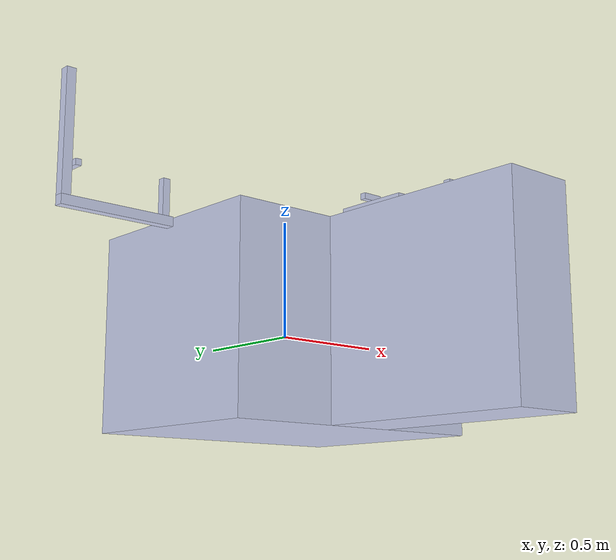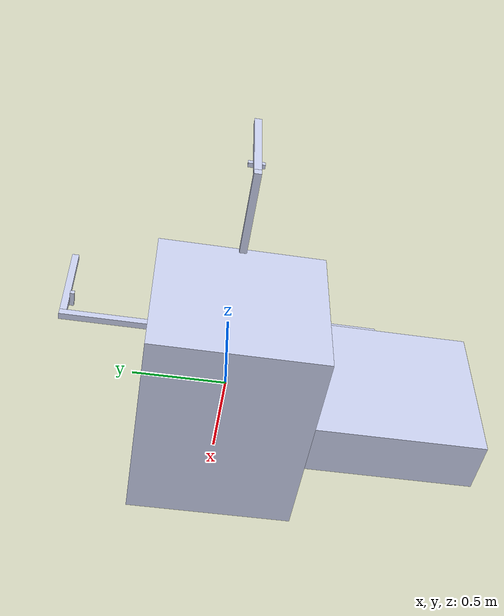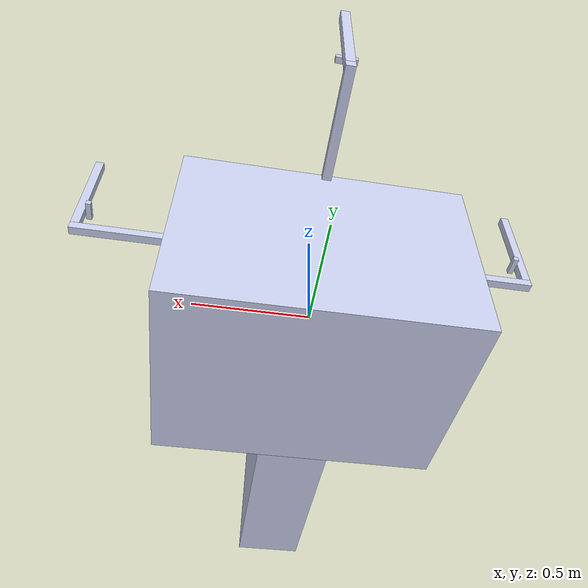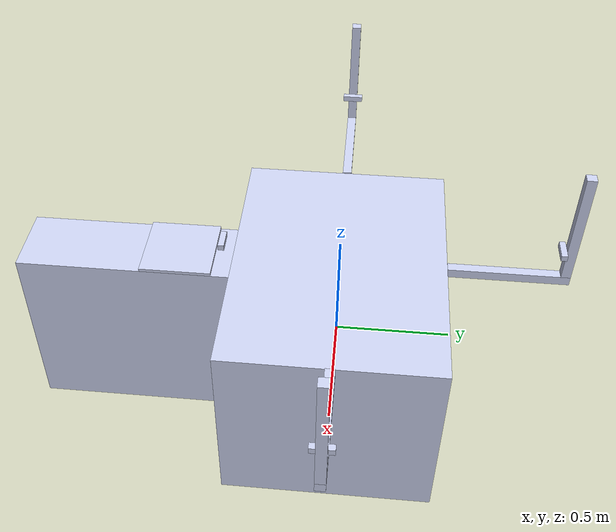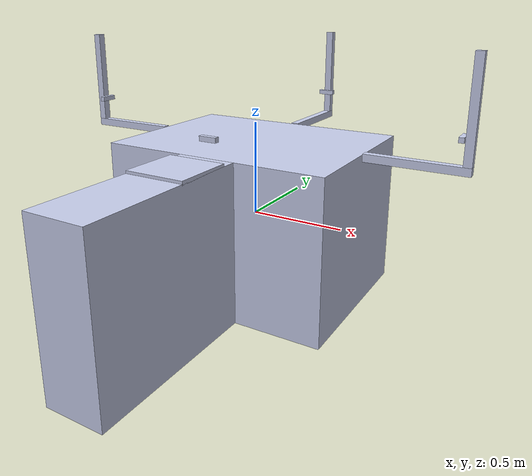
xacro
<?xml version="1.0"?>
<robot xmlns:xi="http://www.w3.org/2001/XInclude"
    xmlns:gazebo="http://playerstage.sourceforge.net/gazebo/xmlschema/#gz"
    xmlns:model="http://playerstage.sourceforge.net/gazebo/xmlschema/#model"
    xmlns:sensor="http://playerstage.sourceforge.net/gazebo/xmlschema/#sensor"
    xmlns:body="http://playerstage.sourceforge.net/gazebo/xmlschema/#body"
    xmlns:geom="http://playerstage.sourceforge.net/gazebo/xmlschema/#geom"
    xmlns:joint="http://playerstage.sourceforge.net/gazebo/xmlschema/#joint"
    xmlns:controller="http://playerstage.sourceforge.net/gazebo/xmlschema/#controller"
    xmlns:interface="http://playerstage.sourceforge.net/gazebo/xmlschema/#interface"
    xmlns:rendering="http://playerstage.sourceforge.net/gazebo/xmlschema/#rendering"
    xmlns:renderable="http://playerstage.sourceforge.net/gazebo/xmlschema/#renderable"
    xmlns:physics="http://playerstage.sourceforge.net/gazebo/xmlschema/#physics"
    xmlns:xacro="http://ros.org/wiki/xacro" name="ur5e_d435_millibar_combined_r2f85" >

  <xacro:include filename="$(find armada_description)/armada_test_station/urdf/workstation_model.urdf.xacro" />

  <xacro:workstation prefix="table_" namespace=""/>

</robot>

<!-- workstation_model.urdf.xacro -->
<robot xmlns:xi="http://www.w3.org/2001/XInclude"
    xmlns:gazebo="http://playerstage.sourceforge.net/gazebo/xmlschema/#gz"
    xmlns:model="http://playerstage.sourceforge.net/gazebo/xmlschema/#model"
    xmlns:sensor="http://playerstage.sourceforge.net/gazebo/xmlschema/#sensor"
    xmlns:body="http://playerstage.sourceforge.net/gazebo/xmlschema/#body"
    xmlns:geom="http://playerstage.sourceforge.net/gazebo/xmlschema/#geom"
    xmlns:joint="http://playerstage.sourceforge.net/gazebo/xmlschema/#joint"
    xmlns:controller="http://playerstage.sourceforge.net/gazebo/xmlschema/#controller"
    xmlns:interface="http://playerstage.sourceforge.net/gazebo/xmlschema/#interface"
    xmlns:rendering="http://playerstage.sourceforge.net/gazebo/xmlschema/#rendering"
    xmlns:renderable="http://playerstage.sourceforge.net/gazebo/xmlschema/#renderable"
    xmlns:physics="http://playerstage.sourceforge.net/gazebo/xmlschema/#physics"
    xmlns:xacro="http://ros.org/wiki/xacro">

  <xacro:macro name="workstation" params="prefix namespace">

  <xacro:include filename="$(find armada_gazebo)/armada_test_station/urdf/workstation_model_gazebo.xacro" />
  <xacro:include filename="$(find armada_gazebo)/armada_test_station/urdf/workstation_depth_cameras_gazebo.xacro" />

  <xacro:workstation_gazebo prefix="${prefix}" />
  <xacro:workstation_depth_cameras_gazebo prefix="${prefix}" />

  <!-- TABLE BASE LINK -->
  <link name="${prefix}base_link">
    <visual>
      <origin xyz="0.0 0.0 0.0" rpy="0 0 0" />
      <geometry>
        <box size="1.2 0.9 0.82"/>
      </geometry>
      <material name="">
        <color rgba="0.79216 0.81961 0.93333 1" />
      </material>
    </visual>
    <collision>
      <origin xyz="0.0 0.0 0.0" rpy="0 0 0" />
      <geometry>
        <box size="1.2 0.9 0.82"/>
      </geometry>
    </collision>
  </link>

  <!-- TABLE TO PEDESTAL JOINT -->
  <joint name="table_to_pedestal_joint" type="fixed">
    <origin xyz="0.0 -0.9 0" rpy="0.0 0.0 0.0" />
    <parent link="${prefix}base_link" />
    <child link="${prefix}pedestal_link" />
    <axis xyz="0 0 0" />
  </joint>

  <!-- PEDESTAL LINK -->
  <link name="${prefix}pedestal_link">
    <inertial>
      <origin xyz="0 0 1" rpy="0 0 0" />
      <mass value="1" />
      <inertia ixx="1" ixy="0" ixz="0" iyy="1" iyz="0" izz="1" />
    </inertial>
    <visual>
      <origin xyz="0.0 0.0 0.0" rpy="0 0 0" />
      <geometry>
        <box size="0.3 0.9 0.82"/>
      </geometry>
      <material name="">
        <color rgba="0.79216 0.81961 0.93333 1" />
      </material>
    </visual>
    <collision>
      <origin xyz="0.0 0.0 0.0" rpy="0 0 0" />
      <geometry>
        <box size="0.3 0.9 0.82"/>
      </geometry>
    </collision>
  </link>

  <!-- PEDESTAL TO MOUNTING PLATE JOINT -->
  <joint name="pedestal_to_mounting_plate_joint" type="fixed">
    <origin xyz="0.0 0.225 0.414" rpy="0.0 0.0 ${pi}" />
    <parent link="${prefix}pedestal_link" />
    <child link="${prefix}mounting_plate_link" />
    <axis xyz="0 0 0" />
  </joint>

  <!-- MOUNTING PLATE LINK -->
  <link name="${prefix}mounting_plate_link">
    <inertial>
      <origin xyz="0 0 1" rpy="0 0 0" />
      <mass value="1" />
      <inertia ixx="1" ixy="0" ixz="0" iyy="1" iyz="0" izz="1" />
    </inertial>
    <visual>
      <origin xyz="0.0 0.0 0.0" rpy="0 0 0" />
      <geometry>
        <box size="0.3 0.3 0.02"/>
      </geometry>
      <material name="">
        <color rgba="0.79216 0.81961 0.93333 1" />
      </material>
    </visual>
    <collision>
      <origin xyz="0.0 0.0 0.0" rpy="0 0 0" />
      <geometry>
        <box size="0.3 0.3 0.0095"/>
      </geometry>
    </collision>
  </link>

  <!--  THIS IS WHERE WE ARE CREATING AN EXPERIMENTAL BASE_CAMERA LINK FOR OUR **ACTUAL** REALSENSE CAMERA -->

  <!-- WRIST VERTICAL ARM TO LEFT CAMERA JOINT -->
  <joint name="mounting_plate_to_wrist_camera_joint" type="fixed">
    <origin xyz="-0.042 -0.19 0.10" rpy="0.0 0.0 ${pi/2}" />
    <parent link="${prefix}mounting_plate_link" />
    <child link="${prefix}wrist_camera_link" />
    <axis xyz="0 0 0" />
  </joint>

  <!-- WRIST CAMERA LINK -->
  <link name="${prefix}wrist_camera_link">
    <inertial>
      <origin xyz="0 0 1" rpy="0 0 0" />
      <mass value="1" />
      <inertia ixx="1" ixy="0" ixz="0" iyy="1" iyz="0" izz="1" />
    </inertial>
    <visual>
      <origin xyz="0.0 0.0 0.0" rpy="0 0 0" />
      <geometry>
        <box size="0.025 0.09 0.025"/>
      </geometry>
      <material name="">
        <color rgba="0.79216 0.81961 0.93333 1" />
      </material>
    </visual>
    <collision>
      <origin xyz="0.0 0.0 0.0" rpy="0 0 0" />
      <geometry>
        <box size="0.025 0.09 0.025"/>
      </geometry>
    </collision>
  </link>

  <!-- Create a virtual joint between left_camera_link and left_gazebo_depth_camera link -->
  <joint name="${prefix}wrist_camera_to_base_optical_joint" type="fixed">
    <origin xyz="0.0 0.0 0.0" rpy="${-pi/2} 0.0 ${-pi/2}" />
    <parent link="${prefix}wrist_camera_link" />
    <child link="${namespace}/${prefix}wrist_optical" />
    <axis xyz="0 0 0" />
  </joint>

  <!-- WRIST OPTICAL -->
  <link name="${namespace}/${prefix}wrist_optical" />

  <!--  THIS IS WHERE WE ARE CREATING AN EXPERIMENTAL BASE_CAMERA LINK FOR OUR **ACTUAL** REALSENSE CAMERA -->

  <!-- TABLE TO LEFT HORIZONTAL ARM JOINT -->
  <joint name="table_to_left_horizontal_arm_joint" type="fixed">
    <origin xyz="-0.85 0.0 0.395" rpy="0.0 0.0 0.0" />
    <parent link="${prefix}base_link" />
    <child link="${prefix}left_horizontal_arm_link" />
    <axis xyz="0 0 0" />
  </joint>

  <!-- LEFT HORIZONTAL ARM LINK -->
  <link name="${prefix}left_horizontal_arm_link">
    <inertial>
      <origin xyz="0 0 1" rpy="0 0 0" />
      <mass value="1" />
      <inertia ixx="1" ixy="0" ixz="0" iyy="1" iyz="0" izz="1" />
    </inertial>
    <visual>
      <origin xyz="0.0 0.0 0.0" rpy="0 0 0" />
      <geometry>
        <box size="0.5 0.04 0.04"/>
      </geometry>
      <material name="">
        <color rgba="0.79216 0.81961 0.93333 1" />
      </material>
    </visual>
    <collision>
      <origin xyz="0.0 0.0 0.0" rpy="0 0 0" />
      <geometry>
        <box size="0.5 0.04 0.04"/>
      </geometry>
    </collision>
  </link>

  <!-- LEFT HORIZONTAL ARM TO LEFT VERTICAL ARM JOINT -->
  <joint name="left_horizontal_arm_to_left_vertical_arm_joint" type="fixed">
    <origin xyz="-0.23 0.0 0.27" rpy="0.0 0.0 0.0" />
    <parent link="${prefix}left_horizontal_arm_link" />
    <child link="${prefix}left_vertical_arm_link" />
    <axis xyz="0 0 0" />
  </joint>

  <!-- LEFT VERTICAL ARM LINK -->
  <link name="${prefix}left_vertical_arm_link">
    <inertial>
      <origin xyz="0 0 1" rpy="0 0 0" />
      <mass value="1" />
      <inertia ixx="1" ixy="0" ixz="0" iyy="1" iyz="0" izz="1" />
    </inertial>
    <visual>
      <origin xyz="0.0 0.0 0.0" rpy="0 0 0" />
      <geometry>
        <box size="0.04 0.04 0.5"/>
      </geometry>
      <material name="">
        <color rgba="0.79216 0.81961 0.93333 1" />
      </material>
    </visual>
    <collision>
      <origin xyz="0.0 0.0 0.0" rpy="0 0 0" />
      <geometry>
        <box size="0.04 0.04 0.5"/>
      </geometry>
    </collision>
  </link>

  <!-- LEFT VERTICAL ARM TO LEFT CAMERA JOINT -->
  <joint name="left_vertical_arm_to_left_camera_joint" type="fixed">
    <origin xyz="0.0325 0.0 -0.125" rpy="0.0 0.0 0.0" />
    <parent link="${prefix}left_vertical_arm_link" />
    <child link="${prefix}left_camera_link" />
    <axis xyz="0 0 0" />
  </joint>

  <!-- LEFT CAMERA LINK -->
  <link name="${prefix}left_camera_link">
    <inertial>
      <origin xyz="0 0 1" rpy="0 0 0" />
      <mass value="1" />
      <inertia ixx="1" ixy="0" ixz="0" iyy="1" iyz="0" izz="1" />
    </inertial>
    <visual>
      <origin xyz="0.0 0.0 0.0" rpy="0 0 0" />
      <geometry>
        <box size="0.025 0.09 0.025"/>
      </geometry>
      <material name="">
        <color rgba="0.79216 0.81961 0.93333 1" />
      </material>
    </visual>
    <collision>
      <origin xyz="0.0 0.0 0.0" rpy="0 0 0" />
      <geometry>
        <box size="0.025 0.09 0.025"/>
      </geometry>
    </collision>
  </link>

  <!-- Create a virtual joint between left_camera_link and left_gazebo_depth_camera link -->
  <joint name="${prefix}left_camera_to_left_optical_joint" type="fixed">
    <origin xyz="0.0 0.0 0.0" rpy="${-pi/2} 0.0 ${-pi/2}" />
    <parent link="${prefix}left_camera_link" />
    <child link="${namespace}/${prefix}left_optical" />
    <axis xyz="0 0 0" />
  </joint>

  <!-- LEFT OPTICAL -->
  <link name="${namespace}/${prefix}left_optical" />

  <!-- TABLE TO RIGHT HORIZONTAL ARM JOINT -->
  <joint name="table_to_right_horizontal_arm_joint" type="fixed">
    <origin xyz="0.85 0.0 0.395" rpy="0.0 0.0 0.0" />
    <parent link="${prefix}base_link" />
    <child link="${prefix}right_horizontal_arm_link" />
    <axis xyz="0 0 0" />
  </joint>

  <!-- RIGHT HORIZONTAL ARM LINK -->
  <link name="${prefix}right_horizontal_arm_link">
    <inertial>
      <origin xyz="0 0 1" rpy="0 0 0" />
      <mass value="1" />
      <inertia ixx="1" ixy="0" ixz="0" iyy="1" iyz="0" izz="1" />
    </inertial>
    <visual>
      <origin xyz="0.0 0.0 0.0" rpy="0 0 0" />
      <geometry>
        <box size="0.5 0.04 0.04"/>
      </geometry>
      <material name="">
        <color rgba="0.79216 0.81961 0.93333 1" />
      </material>
    </visual>
    <collision>
      <origin xyz="0.0 0.0 0.0" rpy="0 0 0" />
      <geometry>
        <box size="0.5 0.04 0.04"/>
      </geometry>
    </collision>
  </link>

  <!-- RIGHT HORIZONTAL ARM TO RIGHT VERTICAL ARM JOINT -->
  <joint name="right_horizontal_arm_to_right_vertical_arm_joint" type="fixed">
    <origin xyz="0.23 0.0 0.27" rpy="0.0 0.0 0.0" />
    <parent link="${prefix}right_horizontal_arm_link" />
    <child link="${prefix}right_vertical_arm_link" />
    <axis xyz="0 0 0" />
  </joint>

  <!-- RIGHT VERTICAL ARM LINK -->
  <link name="${prefix}right_vertical_arm_link">
    <inertial>
      <origin xyz="0 0 1" rpy="0 0 0" />
      <mass value="1" />
      <inertia ixx="1" ixy="0" ixz="0" iyy="1" iyz="0" izz="1" />
    </inertial>
    <visual>
      <origin xyz="0.0 0.0 0.0" rpy="0 0 0" />
      <geometry>
        <box size="0.04 0.04 0.5"/>
      </geometry>
      <material name="">
        <color rgba="0.79216 0.81961 0.93333 1" />
      </material>
    </visual>
    <collision>
      <origin xyz="0.0 0.0 0.0" rpy="0 0 0" />
      <geometry>
        <box size="0.04 0.04 0.5"/>
      </geometry>
    </collision>
  </link>

  <!-- change these values for camera direction -->
  <!-- RIGHT VERTICAL ARM TO RIGHT CAMERA JOINT -->
  <joint name="right_vertical_arm_to_right_camera_joint" type="fixed">
    <origin xyz="-0.0325 0.0 -0.125" rpy="0.0 0.0 ${pi}" />
    <parent link="${prefix}right_vertical_arm_link" />
    <child link="${prefix}right_camera_link" />
    <axis xyz="0 0 0" />
  </joint>

  <!-- RIGHT CAMERA LINK -->
  <link name="${prefix}right_camera_link">
    <inertial>
      <origin xyz="0 0 1" rpy="0 0 0" />
      <mass value="1" />
      <inertia ixx="1" ixy="0" ixz="0" iyy="1" iyz="0" izz="1" />
    </inertial>
    <visual>
      <origin xyz="0.0 0.0 0.0" rpy="0 0 0" />
      <geometry>
        <box size="0.025 0.09 0.025"/>
      </geometry>
      <material name="">
        <color rgba="0.79216 0.81961 0.93333 1" />
      </material>
    </visual>
    <collision>
      <origin xyz="0.0 0.0 0.0" rpy="0 0 0" />
      <geometry>
        <box size="0.025 0.09 0.025"/>
      </geometry>
    </collision>
  </link>

  <!-- ${-pi/2} ${pi/2} ${-pi} ${pi} -->
  <!-- change these values for location of camera frame -->
  <!-- Create a virtual joint between right_camera_link and right_gazebo_depth_camera link -->
  <joint name="${prefix}right_camera_to_right_optical_joint" type="fixed">
    <origin xyz="0.0 0.0 0.0" rpy="${-pi/2} 0.0 ${-pi/2}" />
    <parent link="${prefix}right_camera_link" />
    <child link="${namespace}/${prefix}right_optical" />
    <axis xyz="0 0 0" />
  </joint>

  <!-- RIGHT OPTICAL -->
  <link name="${namespace}/${prefix}right_optical" />

  <!-- TABLE TO REAR HORIZONTAL ARM JOINT -->
  <joint name="table_to_rear_horizontal_arm_joint" type="fixed">
    <origin xyz="0.0 0.7 0.395" rpy="0.0 0.0 0.0" />
    <parent link="${prefix}base_link" />
    <child link="${prefix}rear_horizontal_arm_link" />
    <axis xyz="0 0 0" />
  </joint>

  <!-- REAR HORIZONTAL ARM LINK -->
  <link name="${prefix}rear_horizontal_arm_link">
    <inertial>
      <origin xyz="0 0 1" rpy="0 0 0" />
      <mass value="1" />
      <inertia ixx="1" ixy="0" ixz="0" iyy="1" iyz="0" izz="1" />
    </inertial>
    <visual>
      <origin xyz="0.0 0.0 0.0" rpy="0 0 0" />
      <geometry>
        <box size="0.04 0.5 0.04"/>
      </geometry>
      <material name="">
        <color rgba="0.79216 0.81961 0.93333 1" />
      </material>
    </visual>
    <collision>
      <origin xyz="0.0 0.0 0.0" rpy="0 0 0" />
      <geometry>
        <box size="0.04 0.5 0.04"/>
      </geometry>
    </collision>
  </link>

  <!-- REAR HORIZONTAL ARM TO REAR VERTICAL ARM JOINT -->
  <joint name="rear_horizontal_arm_to_rear_vertical_arm_joint" type="fixed">
    <origin xyz="0.0 0.23 0.27" rpy="0.0 0.0 0.0" />
    <parent link="${prefix}rear_horizontal_arm_link" />
    <child link="${prefix}rear_vertical_arm_link" />
    <axis xyz="0 0 0" />
  </joint>

  <!-- REAR VERTICAL ARM LINK -->
  <link name="${prefix}rear_vertical_arm_link">
    <inertial>
      <origin xyz="0 0 1" rpy="0 0 0" />
      <mass value="1" />
      <inertia ixx="1" ixy="0" ixz="0" iyy="1" iyz="0" izz="1" />
    </inertial>
    <visual>
      <origin xyz="0.0 0.0 0.0" rpy="0 0 0" />
      <geometry>
        <box size="0.04 0.04 0.5"/>
      </geometry>
      <material name="">
        <color rgba="0.79216 0.81961 0.93333 1" />
      </material>
    </visual>
    <collision>
      <origin xyz="0.0 0.0 0.0" rpy="0 0 0" />
      <geometry>
        <box size="0.04 0.04 0.5"/>
      </geometry>
    </collision>
  </link>

  <!-- REAR VERTICAL ARM TO REAR CAMERA JOINT -->
  <joint name="rear_vertical_arm_to_rear_camera_joint" type="fixed">
    <origin xyz="0.0 -0.0325 -0.125" rpy="0.0 0.0 ${-pi/2}" />
    <parent link="${prefix}rear_vertical_arm_link" />
    <child link="${prefix}rear_camera_link" />
    <axis xyz="0 0 0" />
  </joint>

  <!-- REAR CAMERA LINK -->
  <link name="${prefix}rear_camera_link">
    <inertial>
      <origin xyz="0 0 1" rpy="0 0 0" />
      <mass value="1" />
      <inertia ixx="1" ixy="0" ixz="0" iyy="1" iyz="0" izz="1" />
    </inertial>
    <visual>
      <origin xyz="0.0 0.0 0.0" rpy="0 0 0" />
      <geometry>
        <box size="0.025 0.09 0.025"/>
      </geometry>
      <material name="">
        <color rgba="0.79216 0.81961 0.93333 1" />
      </material>
    </visual>
    <collision>
      <origin xyz="0.0 0.0 0.0" rpy="0 0 0" />
      <geometry>
        <box size="0.025 0.09 0.025"/>
      </geometry>
    </collision>
  </link>

  <!-- Create a virtual joint between left_camera_link and left_gazebo_depth_camera link -->
  <joint name="${prefix}rear_camera_to_rear_optical_joint" type="fixed">
    <origin xyz="0.0 0.0 0.0" rpy="${-pi/2} 0.0 ${-pi/2}" />
    <parent link="${prefix}rear_camera_link" />
    <child link="${namespace}/${prefix}rear_optical" />
    <axis xyz="0 0 0" />
  </joint>

  <!-- REAR OPTICAL -->
  <link name="${namespace}/${prefix}rear_optical" />

  </xacro:macro>
</robot>
